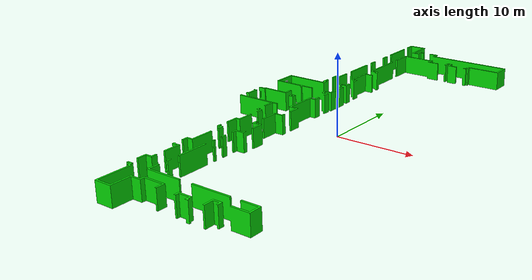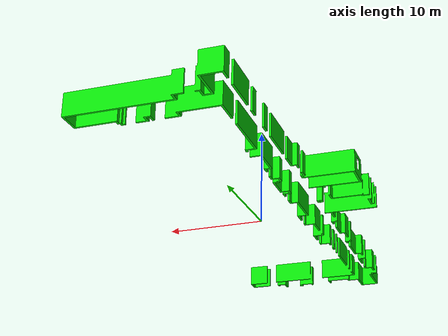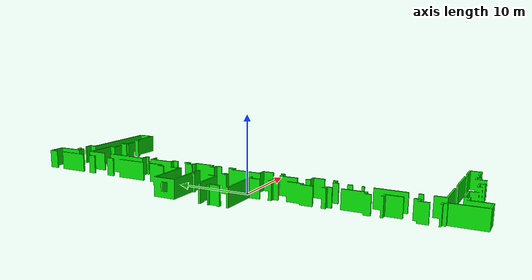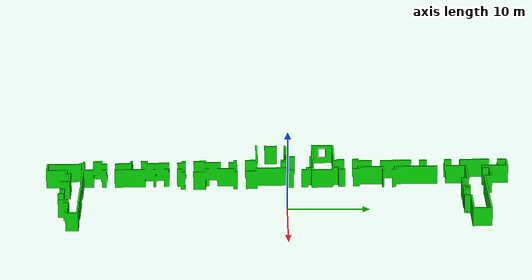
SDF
<?xml version="1.0"?>
<sdf version='1.6'>
  <model name='UT_HALL2'>
    <static>0</static>
    <link name='UT_HALL2'>
      <pose frame=''>0 0 0 0 -0 0</pose>
      <inertial>
        <pose frame=''>-3.8601 -7.9471 2.7308 0 -0 0</pose>
        <mass>19841</mass>
        <inertia>
          <ixx>5.721e+06</ixx>
          <ixy>847800</ixy>
          <ixz>7398.7</ixz>
          <iyy>378450</iyy>
          <iyz>49770</iyz>
          <izz>6.081e+06</izz>
        </inertia>
      </inertial>
      <collision name='UT_HALL2_collision'>
        <pose frame=''>0 0 0 1.5708 -0 0</pose>
        <geometry>
          <mesh>
            <scale>1 1 1</scale>
            <uri>model://UT_HALL2/meshes/UT_HALL2.dae</uri>
          </mesh>
        </geometry>
      </collision>
      <visual name='UT_HALL2_visual'>
        <pose frame=''>0 0 0 1.5708 -0 0</pose>
        <geometry>
          <mesh>
            <scale>1 1 1</scale>
            <uri>model://UT_HALL2/meshes/UT_HALL2.dae</uri>
          </mesh>
        </geometry>
      </visual>
    </link>
  </model>
</sdf>
